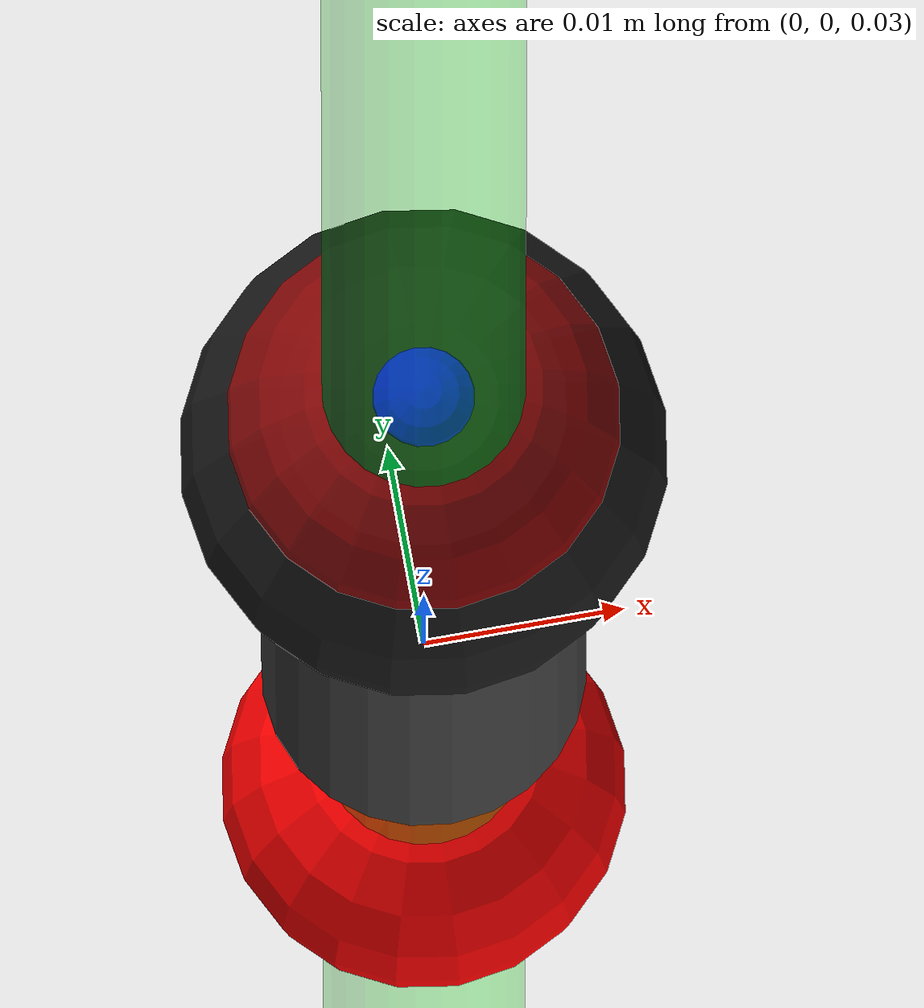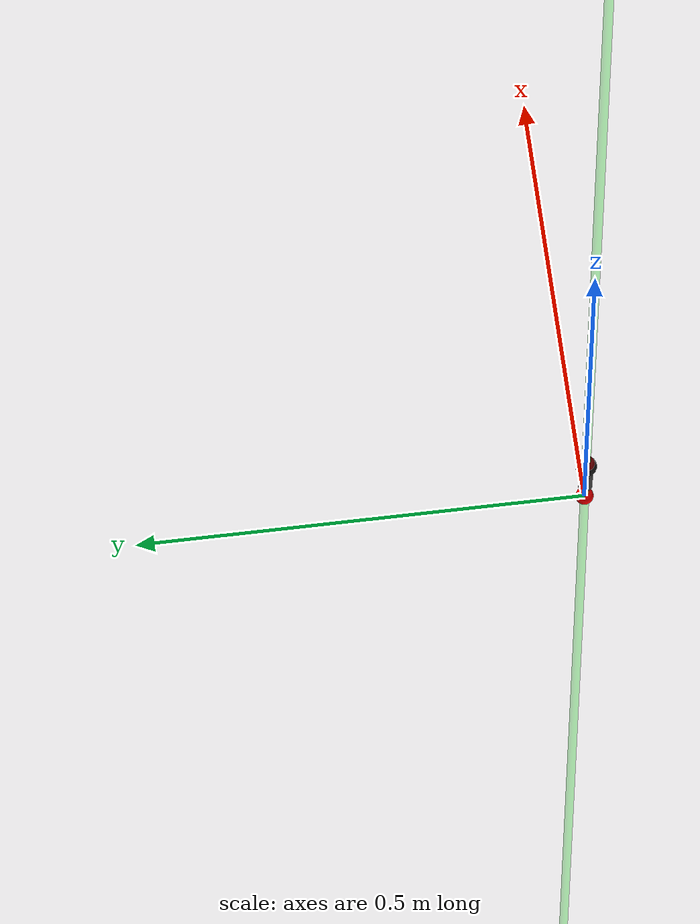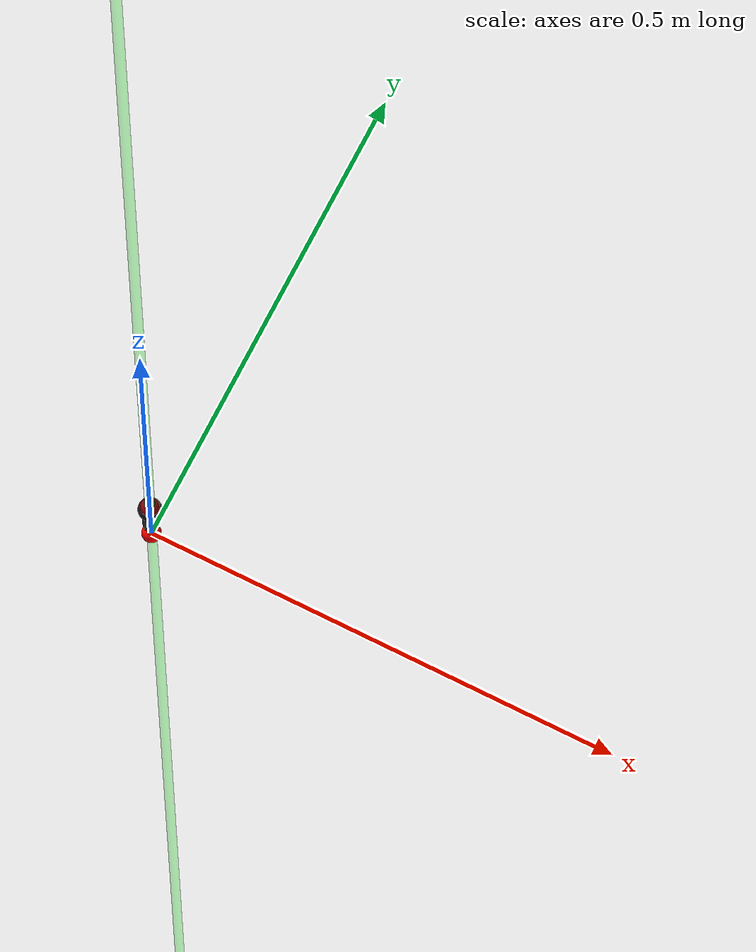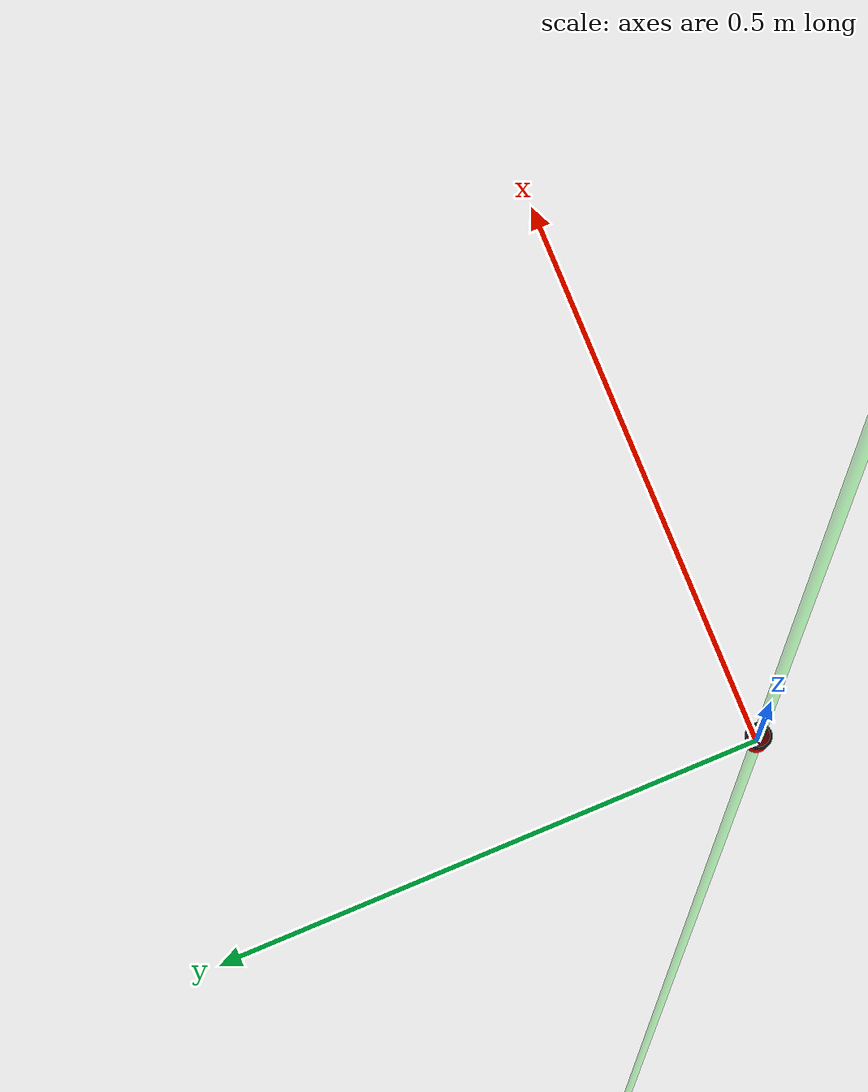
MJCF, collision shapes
<mujoco model="rover2026_solenoid_model">
    <default>
        <joint limited="false" damping="5.0" armature="0.1" frictionloss="0.1" />
        <geom condim="4" contype="1" conaffinity="1" />

        <default class="collision">
            <geom group="0" rgba="0.7 0.7 0.7 1" type="mesh" />
        </default>

        <default class="visual">
            <geom group="1" material="default_material" type="mesh" />
        </default>
    </default>

    <compiler angle="radian" eulerseq="xyz" />

    <asset>
        <material name="default_visual" rgba="0.7 0.7 0.7 1" />
        <material name="default_material" rgba="0.7 0.7 0.7 1" />
        <!-- Reuse existing flange mesh for visual continuity -->
        <mesh name="base_ee" file="meshes/rover2025_gripper/Base-EE.stl" />
    </asset>

    <worldbody>
        <!-- Attachment flange — mounted at right_hand body in robot.xml -->
        <body name="base_ee" pos="0 0 0">
            <site name="ft_frame" pos="0 0 0" size="0.01 0.01 0.01"
                  rgba="1 0 0 1" type="sphere" group="1" />

            <geom class="visual" mesh="base_ee" conaffinity="0" contype="0" />

            <inertial pos="0 0 0.03" mass="0.25"
                      diaginertia="0.0005 0.0005 0.0002" />

            <camera name="eef_cam" pos="0.025 0 0.03"
                    euler="-1.047 0 0" fovy="60" />

            <body name="eef" pos="0 0 0.075" quat="1 0 0 0">
                <site name="grip_site" pos="0 0 0" size="0.01 0.01 0.01"
                      rgba="1 0 0 0.5" type="sphere" group="1" />
                <site name="ee_x" pos="0.1 0 0" size="0.005 .1"
                      quat="0.707105 0 0.707108 0" rgba="1 0 0 0" type="cylinder" group="1" />
                <site name="ee_y" pos="0 0.1 0" size="0.005 .1"
                      quat="0.707105 0.707108 0 0" rgba="0 1 0 0" type="cylinder" group="1" />
                <site name="ee_z" pos="0 0 0.1" size="0.005 .1"
                      quat="1 0 0 0" rgba="0 0 1 0" type="cylinder" group="1" />
                <site name="grip_site_cylinder" pos="0 0 0" size="0.005 10"
                      rgba="0 1 0 0.3" type="cylinder" group="1" />
            </body>

            <body name="linear_actuator" pos="0 0 0.04">
                <joint name="actuator_slide" type="slide" axis="0 0 1"
                       range="0.0 0.08" limited="true"
                       damping="500.0" stiffness="200.0" armature="0.5" />

                <!-- Housing cylinder (visual only) -->
                <geom name="actuator_housing" type="cylinder"
                      size="0.008 0.015" pos="0 0 0"
                      rgba="0.25 0.25 0.25 1"
                      contype="0" conaffinity="0" group="1" />

                <!-- Tip: active collision geom — cfrc_ext on this body = contact signal -->
                <geom name="actuator_tip" type="sphere"
                      size="0.012" pos="0 0 0.03"
                      rgba="0.1 0.1 0.1 1"
                      contype="1" conaffinity="1" group="0"
                      solref="0.01 1" solimp="0.95 0.99 0.001" />

                <!-- Site at the very end of the tip for the rangefinder -->
                <site name="actuator_tip_site" pos="0 0 0.04"
                      size="0.003" rgba="0 0 1 1" group="1" />

                <inertial pos="0 0 0.02" mass="0.04"
                          diaginertia="0.000005 0.000005 0.000002" />
            </body>
        </body>
    </worldbody>

    <actuator>
        <motor name="solenoid_actuator" joint="actuator_slide"
               ctrllimited="true" ctrlrange="0 20" gear="1" />
    </actuator>

    <sensor>
        <force   name="force_ee"        site="ft_frame" />
        <torque  name="torque_ee"       site="ft_frame" />
        <rangefinder name="eef_rangefinder" site="actuator_tip_site" cutoff="0.3" />
    </sensor>
</mujoco>
